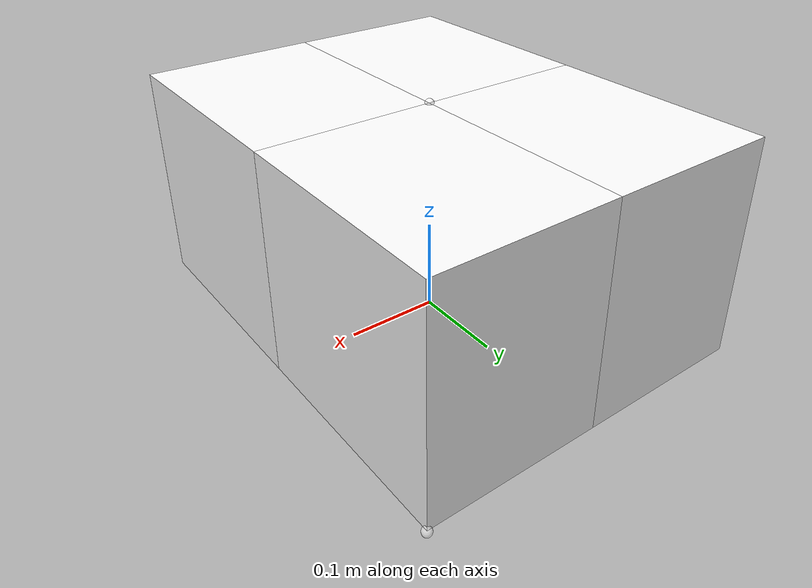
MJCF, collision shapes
<mujoco model="cardbox_d1">
  <default>
    <default class="visual">
      <geom group="1" type="mesh" contype="0" conaffinity="0" density="100"/>
    </default>
    <default class="collision">
      <geom group="0" type="mesh" density="100" solimp="0.95 0.98 0.001" solref="0.004 1" rgba="1 1 1 0.25"/>
    </default>
  </default>
  <asset>
    <texture type="2d" name="T_Cardbox_D2_Albedo" file="textures/T_Cardbox_D2_Albedo.png"/>
    <material name="Cardboard_D1" texture="T_Cardbox_D2_Albedo" specular="0.5" shininess="0.25"/>
    <mesh file="meshes/cardbox_d1.obj" name="cardbox_d1"/>
  </asset>
  <worldbody>
    <body>
      <body name="object">
        <geom material="Cardboard_D1" mesh="cardbox_d1" class="visual"/>
        <geom type="box" pos="0.09428064959634232 0.12339462815979717 0.11940572542661872" size="0.1192357279440354 0.09456364248412022 0.12366796645395607" quat="0.49910907005570043 0.5009598649656046 -0.49999003057083774 0.4999393155289452" class="collision"/>
        <geom type="box" pos="0.09472584082200815 -0.12394045687712027 0.11893538301876257" size="0.1192357279440354 0.09456364248412022 0.12366796645395607" quat="0.49910907005570043 0.5009598649656046 -0.49999003057083774 0.4999393155289452" class="collision"/>
        <geom type="box" pos="-0.0948463271159276 0.12305415913422386 0.11943180179863415" size="0.1192357279440354 0.09456364248412022 0.12366796645395607" quat="0.49910907005570043 0.5009598649656046 -0.49999003057083774 0.4999393155289452" class="collision"/>
        <geom type="box" pos="-0.09440113589026176 -0.12428092590269357 0.118961459390778" size="0.1192357279440354 0.09456364248412022 0.12366796645395607" quat="0.49910907005570043 0.5009598649656046 -0.49999003057083774 0.4999393155289452" class="collision"/>
      </body>
      <site name="bottom_site" pos="0 0 0.000208" rgba="1 1 1 0.5" size="0.005"/>
      <site name="top_site" pos="0 0 0.238209" rgba="1 1 1 0.5" size="0.005"/>
      <site name="horizontal_radius_site" pos="0.188623 0.247425 0" rgba="1 1 1 0.5" size="0.005"/>
    </body>
  </worldbody>
</mujoco>
